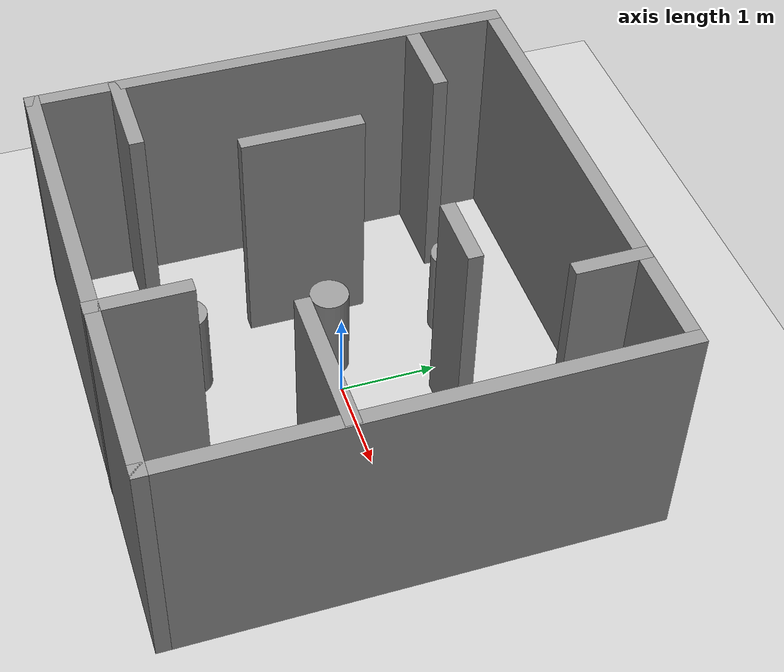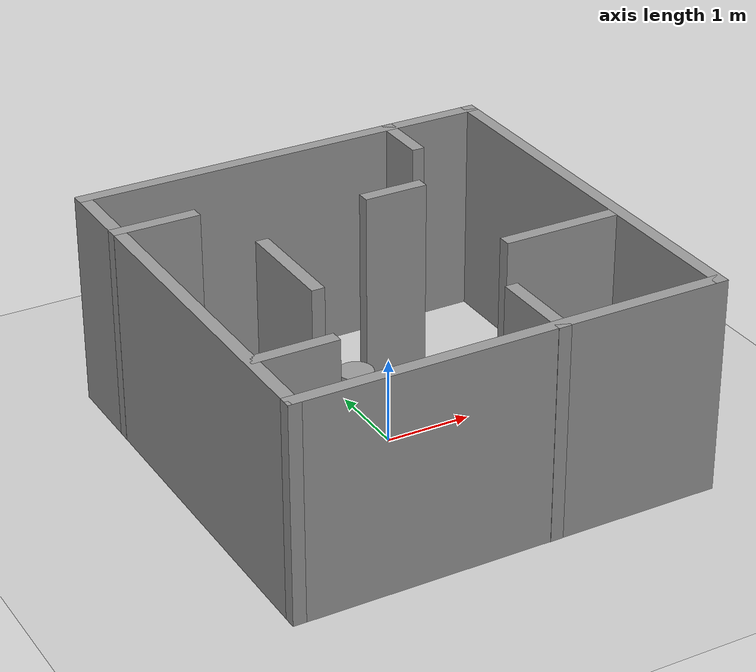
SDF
<sdf version="1.7">
 <world name="default">
  <light name="sun" type="directional">
   <pose>0 0 10 0 -0 0</pose>
   <diffuse>0.8 0.8 0.8 1</diffuse>
   <specular>0.2 0.2 0.2 1</specular>
   <attenuation>
    <range>1000</range>
    <constant>0.9</constant>
    <linear>0.01</linear>
    <quadratic>0.001</quadratic>
   </attenuation>
   <direction>-0.5 0.1 -0.9</direction>
   <spot><inner_angle>0</inner_angle><outer_angle>0</outer_angle><falloff>0</falloff></spot>
  </light>
  <model name="ground_plane">
   <static>1</static>
   <link name="link">
    <collision name="collision">
     <geometry><plane><normal>0 0 1</normal><size>100 100</size></plane></geometry>
     <surface>
      <contact><collide_bitmask>65535</collide_bitmask></contact>
      <friction><ode><mu>100</mu><mu2>50</mu2></ode></friction>
     </surface>
    </collision>
    <visual name="visual">
     <cast_shadows>0</cast_shadows>
     <geometry><plane><normal>0 0 1</normal><size>100 100</size></plane></geometry>
     <material>
      <script><uri>file://media/materials/scripts/gazebo.material</uri><name>Gazebo/Grey</name></script>
     </material>
    </visual>
   </link>
  </model>
  <gravity>0 0 -9.8</gravity>
  <magnetic_field>6e-06 2.3e-05 -4.2e-05</magnetic_field>
  <atmosphere type="adiabatic"/>
  <physics type="ode">
   <max_step_size>0.001</max_step_size>
   <real_time_factor>1</real_time_factor>
   <real_time_update_rate>1000</real_time_update_rate>
  </physics>
  <scene><ambient>0.4 0.4 0.4 1</ambient><background>0.7 0.7 0.7 1</background><shadows>1</shadows></scene>
  <spherical_coordinates>
   <surface_model>EARTH_WGS84</surface_model>
   <latitude_deg>0</latitude_deg>
   <longitude_deg>0</longitude_deg>
   <elevation>0</elevation>
   <heading_deg>0</heading_deg>
  </spherical_coordinates>
  <model name="5x5_maze">
   <pose>0.010577 0.842456 0 0 -0 0</pose>
   <link name="Wall_0">
    <collision name="Wall_0_Collision">
     <geometry><box><size>5 0.15 2.5</size></box></geometry>
     <pose>0 0 1.25 0 -0 0</pose>
    </collision>
    <visual name="Wall_0_Visual">
     <pose>0 0 1.25 0 -0 0</pose>
     <geometry><box><size>5 0.15 2.5</size></box></geometry>
     <material>
      <script><uri>file://media/materials/scripts/gazebo.material</uri><name>Gazebo/Grey</name></script>
      <ambient>1 1 1 1</ambient>
     </material>
     <meta><layer>0</layer></meta>
    </visual>
    <pose>0.000338 1.55971 0 0 -0 0</pose>
   </link>
   <link name="Wall_10">
    <collision name="Wall_10_Collision">
     <geometry><box><size>1 0.15 2.5</size></box></geometry>
     <pose>0 0 1.25 0 -0 0</pose>
    </collision>
    <visual name="Wall_10_Visual">
     <pose>0 0 1.25 0 -0 0</pose>
     <geometry><box><size>1 0.15 2.5</size></box></geometry>
     <material>
      <script><uri>file://media/materials/scripts/gazebo.material</uri><name>Gazebo/Grey</name></script>
      <ambient>1 1 1 1</ambient>
     </material>
     <meta><layer>0</layer></meta>
    </visual>
    <pose>-2.00034 0.659564 0 0 -0 0</pose>
   </link>
   <link name="Wall_12">
    <collision name="Wall_12_Collision">
     <geometry><box><size>0.75 0.15 2.5</size></box></geometry>
     <pose>0 0 1.25 0 -0 0</pose>
    </collision>
    <visual name="Wall_12_Visual">
     <pose>0 0 1.25 0 -0 0</pose>
     <geometry><box><size>0.75 0.15 2.5</size></box></geometry>
     <material>
      <script><uri>file://media/materials/scripts/gazebo.material</uri><name>Gazebo/Grey</name></script>
      <ambient>1 1 1 1</ambient>
     </material>
     <meta><layer>0</layer></meta>
    </visual>
    <pose>1.34643 1.25688 0 0 -0 -1.5708</pose>
   </link>
   <link name="Wall_18">
    <collision name="Wall_18_Collision">
     <geometry><box><size>1 0.15 2.5</size></box></geometry>
     <pose>0 0 1.25 0 -0 0</pose>
    </collision>
    <visual name="Wall_18_Visual">
     <pose>0 0 1.25 0 -0 0</pose>
     <geometry><box><size>1 0.15 2.5</size></box></geometry>
     <material>
      <script><uri>file://media/materials/scripts/gazebo.material</uri><name>Gazebo/Grey</name></script>
      <ambient>1 1 1 1</ambient>
     </material>
     <meta><layer>0</layer></meta>
    </visual>
    <pose>-1.98513 -2.44302 0 0 -0 0</pose>
   </link>
   <link name="Wall_2">
    <collision name="Wall_2_Collision">
     <geometry><box><size>5 0.15 2.5</size></box></geometry>
     <pose>0 0 1.25 0 -0 0</pose>
    </collision>
    <visual name="Wall_2_Visual">
     <pose>0 0 1.25 0 -0 0</pose>
     <geometry><box><size>5 0.15 2.5</size></box></geometry>
     <material>
      <script><uri>file://media/materials/scripts/gazebo.material</uri><name>Gazebo/Grey</name></script>
      <ambient>1 1 1 1</ambient>
     </material>
     <meta><layer>0</layer></meta>
    </visual>
    <pose>2.42534 -0.865289 0 0 -0 -1.5708</pose>
   </link>
   <link name="Wall_20">
    <collision name="Wall_20_Collision">
     <geometry><box><size>1 0.15 2.5</size></box></geometry>
     <pose>0 0 1.25 0 -0 0</pose>
    </collision>
    <visual name="Wall_20_Visual">
     <pose>0 0 1.25 0 -0 0</pose>
     <geometry><box><size>1 0.15 2.5</size></box></geometry>
     <material>
      <script><uri>file://media/materials/scripts/gazebo.material</uri><name>Gazebo/Grey</name></script>
      <ambient>1 1 1 1</ambient>
     </material>
     <meta><layer>0</layer></meta>
    </visual>
    <pose>0.540368 -2.86971 0 0 -0 1.5708</pose>
   </link>
   <link name="Wall_22">
    <collision name="Wall_22_Collision">
     <geometry><box><size>1.5 0.15 2.5</size></box></geometry>
     <pose>0 0 1.25 0 -0 0</pose>
    </collision>
    <visual name="Wall_22_Visual">
     <pose>0 0 1.25 0 -0 0</pose>
     <geometry><box><size>1.5 0.15 2.5</size></box></geometry>
     <material>
      <script><uri>file://media/materials/scripts/gazebo.material</uri><name>Gazebo/Grey</name></script>
      <ambient>1 1 1 1</ambient>
     </material>
     <meta><layer>0</layer></meta>
    </visual>
    <pose>1.73605 -1.51529 0 0 -0 3.14159</pose>
   </link>
   <link name="Wall_3">
    <collision name="Wall_3_Collision">
     <geometry><box><size>5 0.15 2.5</size></box></geometry>
     <pose>0 0 1.25 0 -0 0</pose>
    </collision>
    <visual name="Wall_3_Visual">
     <pose>0 0 1.25 0 -0 0</pose>
     <geometry><box><size>5 0.15 2.5</size></box></geometry>
     <material>
      <script><uri>file://media/materials/scripts/gazebo.material</uri><name>Gazebo/Grey</name></script>
      <ambient>1 1 1 1</ambient>
     </material>
     <meta><layer>0</layer></meta>
    </visual>
    <pose>0.000338 -3.29029 0 0 -0 3.14159</pose>
   </link>
   <link name="Wall_4">
    <collision name="Wall_4_Collision">
     <geometry><box><size>5 0.15 2.5</size></box></geometry>
     <pose>0 0 1.25 0 -0 0</pose>
    </collision>
    <visual name="Wall_4_Visual">
     <pose>0 0 1.25 0 -0 0</pose>
     <geometry><box><size>5 0.15 2.5</size></box></geometry>
     <material>
      <script><uri>file://media/materials/scripts/gazebo.material</uri><name>Gazebo/Grey</name></script>
      <ambient>1 1 1 1</ambient>
     </material>
     <meta><layer>0</layer></meta>
    </visual>
    <pose>-2.42466 -0.865289 0 0 -0 1.5708</pose>
   </link>
   <link name="Wall_6">
    <collision name="Wall_6_Collision">
     <geometry><box><size>0.75 0.15 2.5</size></box></geometry>
     <pose>0 0 1.25 0 -0 0</pose>
    </collision>
    <visual name="Wall_6_Visual">
     <pose>0 0 1.25 0 -0 0</pose>
     <geometry><box><size>0.75 0.15 2.5</size></box></geometry>
     <material>
      <script><uri>file://media/materials/scripts/gazebo.material</uri><name>Gazebo/Grey</name></script>
      <ambient>1 1 1 1</ambient>
     </material>
     <meta><layer>0</layer></meta>
    </visual>
    <pose>0.58182 0.112049 0 0 -0 0</pose>
   </link>
   <link name="Wall_8">
    <collision name="Wall_8_Collision">
     <geometry><box><size>1.25 0.15 2.5</size></box></geometry>
     <pose>0 0 1.25 0 -0 0</pose>
    </collision>
    <visual name="Wall_8_Visual">
     <pose>0 0 1.25 0 -0 0</pose>
     <geometry><box><size>1.25 0.15 2.5</size></box></geometry>
     <material>
      <script><uri>file://media/materials/scripts/gazebo.material</uri><name>Gazebo/Grey</name></script>
      <ambient>1 1 1 1</ambient>
     </material>
     <meta><layer>0</layer></meta>
    </visual>
    <pose>-1.19343 -0.879005 0 0 -0 -1.5708</pose>
   </link>
   <static>1</static>
  </model>
  <model name="unit_cylinder">
   <link name="link">
    <inertial>
     <mass>1</mass>
     <inertia><ixx>0.145833</ixx><ixy>0</ixy><ixz>0</ixz><iyy>0.145833</iyy><iyz>0</iyz><izz>0.125</izz></inertia>
     <pose>0 0 0.5 0 -0 0</pose>
    </inertial>
    <visual name="visual">
     <geometry><cylinder><radius>0.2</radius><length>1</length></cylinder></geometry>
     <material>
      <script><name>Gazebo/Grey</name><uri>file://media/materials/scripts/gazebo.material</uri></script>
      <shader type="pixel"><normal_map>__default__</normal_map></shader>
      <ambient>0.3 0.3 0.3 1</ambient>
      <diffuse>0.7 0.7 0.7 1</diffuse>
      <specular>0.01 0.01 0.01 1</specular>
      <emissive>0 0 0 1</emissive>
     </material>
    </visual>
    <collision name="collision">
     <geometry><cylinder><radius>0.2</radius><length>1</length></cylinder></geometry>
     <surface>
      <friction>
       <ode><mu>1</mu><mu2>1</mu2><fdir1>0 0 0</fdir1><slip1>0</slip1><slip2>0</slip2></ode>
       <torsional>
        <coefficient>1</coefficient>
        <patch_radius>0</patch_radius>
        <surface_radius>0</surface_radius>
        <use_patch_radius>1</use_patch_radius>
        <ode><slip>0</slip></ode>
       </torsional>
      </friction>
      <bounce><restitution_coefficient>0</restitution_coefficient><threshold>1e+06</threshold></bounce>
      <contact>
       <collide_without_contact>0</collide_without_contact>
       <collide_without_contact_bitmask>1</collide_without_contact_bitmask>
       <collide_bitmask>1</collide_bitmask>
       <ode>
        <soft_cfm>0</soft_cfm>
        <soft_erp>0.2</soft_erp>
        <kp>1e+13</kp>
        <kd>1</kd>
        <max_vel>0.01</max_vel>
        <min_depth>0</min_depth>
       </ode>
       <bullet>
        <split_impulse>1</split_impulse>
        <split_impulse_penetration_threshold>-0.01</split_impulse_penetration_threshold>
        <soft_cfm>0</soft_cfm>
        <soft_erp>0.2</soft_erp>
        <kp>1e+13</kp>
        <kd>1</kd>
       </bullet>
      </contact>
     </surface>
    </collision>
   </link>
   <static>0</static>
   <pose>-0.60278 1.35742 0.49999 0 -0 -0.000144</pose>
  </model>
  <model name="unit_cylinder_0">
   <link name="link">
    <inertial>
     <mass>1</mass>
     <inertia><ixx>0.145833</ixx><ixy>0</ixy><ixz>0</ixz><iyy>0.145833</iyy><iyz>0</iyz><izz>0.125</izz></inertia>
     <pose>0 0 0.5 0 -0 0</pose>
    </inertial>
    <visual name="visual">
     <geometry><cylinder><radius>0.2</radius><length>1</length></cylinder></geometry>
     <material>
      <script><name>Gazebo/Grey</name><uri>file://media/materials/scripts/gazebo.material</uri></script>
      <shader type="pixel"><normal_map>__default__</normal_map></shader>
      <ambient>0.3 0.3 0.3 1</ambient>
      <diffuse>0.7 0.7 0.7 1</diffuse>
      <specular>0.01 0.01 0.01 1</specular>
      <emissive>0 0 0 1</emissive>
     </material>
    </visual>
    <collision name="collision">
     <geometry><cylinder><radius>0.2</radius><length>1</length></cylinder></geometry>
     <surface>
      <friction>
       <ode><mu>1</mu><mu2>1</mu2><fdir1>0 0 0</fdir1><slip1>0</slip1><slip2>0</slip2></ode>
       <torsional>
        <coefficient>1</coefficient>
        <patch_radius>0</patch_radius>
        <surface_radius>0</surface_radius>
        <use_patch_radius>1</use_patch_radius>
        <ode><slip>0</slip></ode>
       </torsional>
      </friction>
      <bounce><restitution_coefficient>0</restitution_coefficient><threshold>1e+06</threshold></bounce>
      <contact>
       <collide_without_contact>0</collide_without_contact>
       <collide_without_contact_bitmask>1</collide_without_contact_bitmask>
       <collide_bitmask>1</collide_bitmask>
       <ode>
        <soft_cfm>0</soft_cfm>
        <soft_erp>0.2</soft_erp>
        <kp>1e+13</kp>
        <kd>1</kd>
        <max_vel>0.01</max_vel>
        <min_depth>0</min_depth>
       </ode>
       <bullet>
        <split_impulse>1</split_impulse>
        <split_impulse_penetration_threshold>-0.01</split_impulse_penetration_threshold>
        <soft_cfm>0</soft_cfm>
        <soft_erp>0.2</soft_erp>
        <kp>1e+13</kp>
        <kd>1</kd>
       </bullet>
      </contact>
     </surface>
    </collision>
   </link>
   <static>0</static>
   <pose>-0.404369 -0.002128 0.5 0 0 -8.8e-05</pose>
  </model>
  <model name="unit_cylinder_1">
   <link name="link">
    <inertial>
     <mass>1</mass>
     <inertia><ixx>0.145833</ixx><ixy>0</ixy><ixz>0</ixz><iyy>0.145833</iyy><iyz>0</iyz><izz>0.125</izz></inertia>
     <pose>0 0 0.5 0 -0 0</pose>
    </inertial>
    <visual name="visual">
     <geometry><cylinder><radius>0.2</radius><length>1</length></cylinder></geometry>
     <material>
      <script><name>Gazebo/Grey</name><uri>file://media/materials/scripts/gazebo.material</uri></script>
      <shader type="pixel"><normal_map>__default__</normal_map></shader>
      <ambient>0.3 0.3 0.3 1</ambient>
      <diffuse>0.7 0.7 0.7 1</diffuse>
      <specular>0.01 0.01 0.01 1</specular>
      <emissive>0 0 0 1</emissive>
     </material>
    </visual>
    <collision name="collision">
     <geometry><cylinder><radius>0.2</radius><length>1</length></cylinder></geometry>
     <surface>
      <friction>
       <ode><mu>1</mu><mu2>1</mu2><fdir1>0 0 0</fdir1><slip1>0</slip1><slip2>0</slip2></ode>
       <torsional>
        <coefficient>1</coefficient>
        <patch_radius>0</patch_radius>
        <surface_radius>0</surface_radius>
        <use_patch_radius>1</use_patch_radius>
        <ode><slip>0</slip></ode>
       </torsional>
      </friction>
      <bounce><restitution_coefficient>0</restitution_coefficient><threshold>1e+06</threshold></bounce>
      <contact>
       <collide_without_contact>0</collide_without_contact>
       <collide_without_contact_bitmask>1</collide_without_contact_bitmask>
       <collide_bitmask>1</collide_bitmask>
       <ode>
        <soft_cfm>0</soft_cfm>
        <soft_erp>0.2</soft_erp>
        <kp>1e+13</kp>
        <kd>1</kd>
        <max_vel>0.01</max_vel>
        <min_depth>0</min_depth>
       </ode>
       <bullet>
        <split_impulse>1</split_impulse>
        <split_impulse_penetration_threshold>-0.01</split_impulse_penetration_threshold>
        <soft_cfm>0</soft_cfm>
        <soft_erp>0.2</soft_erp>
        <kp>1e+13</kp>
        <kd>1</kd>
       </bullet>
      </contact>
     </surface>
    </collision>
   </link>
   <static>0</static>
   <pose>-0.560223 -1.42614 0.5 0 0 -3.7e-05</pose>
  </model>
 </world>
</sdf>
